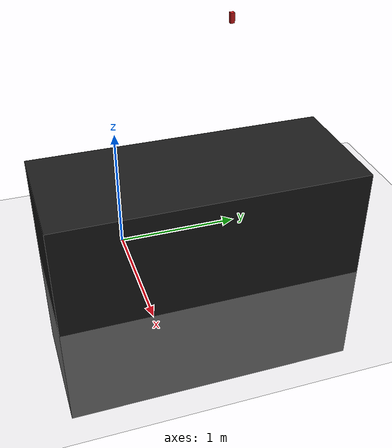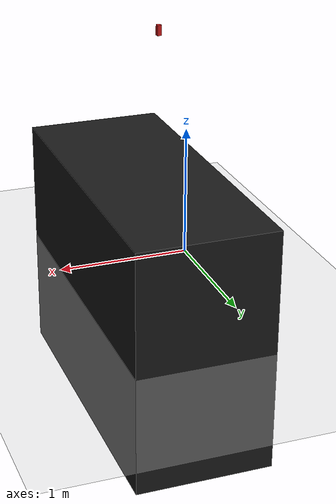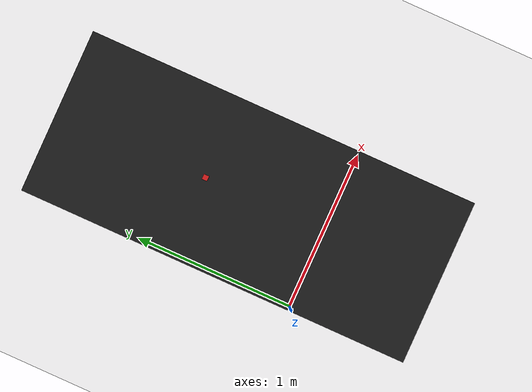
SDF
<?xml version="1.0" ?>
<sdf version="1.7">
    <world name="default">
        <!-- Physics -->
        <plugin
            filename="libignition-gazebo-physics-system.so"
            name="ignition::gazebo::systems::Physics"></plugin>
        <!-- Forwards simulation state to the GUI -->
        <plugin
            filename="libignition-gazebo-scene-broadcaster-system.so"
            name="ignition::gazebo::systems::SceneBroadcaster"></plugin>
        <!-- Processes user commands, like translate and create -->
        <plugin
            filename="libignition-gazebo-user-commands-system.so"
            name="ignition::gazebo::systems::UserCommands"></plugin>
        <!-- Generates rendering sensor data -->
        <plugin
            filename="libignition-gazebo-sensors-system.so"
            name="ignition::gazebo::systems::Sensors">
            <!-- ogre2 not working with just the MESA_GL_VERSION_OVERRIDE=3.3 trick -->
            <render_engine>ogre2</render_engine>
        </plugin>
        <plugin filename="libignition-gazebo-imu-system.so"
        		name="ignition::gazebo::systems::Imu"></plugin>
        <!--light-->
        <light type="directional" name="sun">
            <cast_shadows>true</cast_shadows>
            <pose>0 0 10 0 0 0</pose>
            <diffuse>0.8 0.8 0.8 1</diffuse>
            <specular>0.2 0.2 0.2 1</specular>
            <attenuation>
                <range>1000</range>
                <constant>0.3</constant>
                <linear>0.01</linear>
                <quadratic>0.001</quadratic>
            </attenuation>
            <direction>-0.5 0.1 -0.9</direction>
        </light>
        <!--ground_plane-->
        <model name="ground_plane">
            <static>true</static>
            <link name="link">
                <collision name="collision">
                    <geometry>
                        <plane>
                            <normal>0 0 1</normal>
                        </plane>
                    </geometry>
                </collision>
                <visual name="visual">
                    <geometry>
                        <plane>
                            <normal>0 0 1</normal>
                            <size>100 100</size>
                        </plane>
                    </geometry>
                    <material>
                        <ambient>0.8 0.8 0.8 1</ambient>
                        <diffuse>0.8 0.8 0.8 1</diffuse>
                        <specular>0.8 0.8 0.8 1</specular>
                    </material>
                </visual>
            </link>
        </model>
        <!--test box-->
        <model name='test_bed'>
            <pose>0.5 0.5 0 0 0 0</pose>
            <link name='link'>
            <inertial>
                <mass>10000</mass>
                <inertia>
                <ixx>0.166667</ixx>
                <ixy>0</ixy>
                <ixz>0</ixz>
                <iyy>0.166667</iyy>
                <iyz>0</iyz>
                <izz>0.166667</izz>
                </inertia>
            </inertial>
            <visual name='visual'>
                <geometry>
                <box>
                    <size>1 2.4 1.8</size>
                </box>
                </geometry>
            <material>
                <ambient>0.050 0.050 0.050 1.00</ambient>
                <diffuse>0.10 0.10 0.100 1.00</diffuse>
                <specular>0.1 0.1 0.1 1</specular>
            </material>
            </visual>
            <collision name='collision'>
                <pose>0 0 0 0 0 0</pose>
                <geometry>
                <box>
                    <size>1 2.4 1.8</size>
                </box>
                </geometry>
            </collision>
            </link>
            <joint name="fix" type="fixed">
                <parent>world</parent>
                <child>link</child>
            </joint>
        </model>

        <model name = 'red_box'>
        <relative_to>test_bed::link</relative_to>
        <pose>0.5 0.75 2 0 0 0</pose>
        <link name='link'>
            <inertial>
                <mass>1</mass>
                <inertia>
                <ixx>0.166667</ixx>
                <ixy>0</ixy>
                <ixz>0</ixz>
                <iyy>0.166667</iyy>
                <iyz>0</iyz>
                <izz>0.166667</izz>
                </inertia>
            </inertial>
            <visual name='visual'>
                <geometry>
                <box>
                    <size>0.03 0.03 0.07</size>
                </box>
                </geometry>
            <material>
                <ambient>0.8 0.050 0.050 1.00</ambient>
                <diffuse>0.8 0.10 0.10 1.00</diffuse>
                <specular>0.8 0.1 0.1 1</specular>
            </material>
            </visual>
            <collision name='collision'>
                <pose>0 0 0 0 0 0</pose>
                <geometry>
                <box>
                    <size>0.03 0.03 0.07</size>
                </box>
                </geometry>
            </collision>
            </link>
        </model>
    </world>
</sdf>
